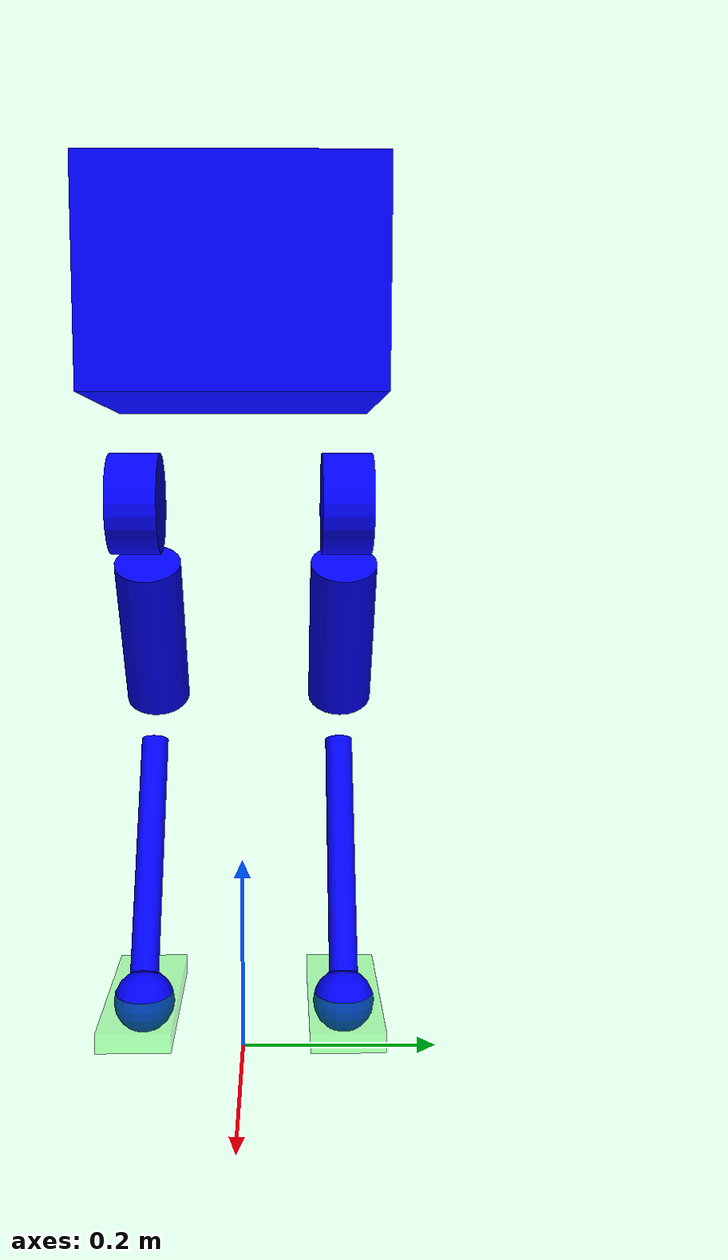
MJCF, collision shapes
<mujoco model="point_foot">
    <compiler angle="radian" meshdir="../meshes/" />
    <size njmax="500" nconmax="100" />

    <default>
        <light castshadow="false" diffuse="1 1 1" />
        <camera fovy="60"/>
        <default class="visual">
            <geom contype="0" conaffinity="0" group="1" type="mesh" rgba="0.9 0.9 0.9 1.0"/>
        </default>
        <geom contype="1" conaffinity="1" condim="6" friction="1.0 0.005 0.0001" rgba="0.5 0.6 0.7 0.0" margin="0.001" group="0" solref="0.01 1" solimp="0.9 0.95 0.001" />
    </default>
    <visual>
        <rgba com="0.502 1.0 0 0.5" contactpoint="1.0 1.0 0.6 0.4" contactforce="0.2 0.98 0.2 0.8"/>
        <scale com="0.2" forcewidth="0.05" contactwidth="0.10" contactheight="0.04"/>
    </visual>

    <option timestep="0.001"/>

    <asset>
        <mesh name="base_Link" file="../meshes/point_foot/base_Link.STL" />
        <mesh name="abad_L_Link" file="../meshes/point_foot/abad_L_Link.STL" />
        <mesh name="hip_L_Link" file="../meshes/point_foot/hip_L_Link.STL" />
        <mesh name="knee_L_Link" file="../meshes/point_foot/knee_L_Link.STL" />
        <mesh name="foot_L_Link" file="../meshes/point_foot/foot_L_Link.STL" />
        <mesh name="abad_R_Link" file="../meshes/point_foot/abad_R_Link.STL" />
        <mesh name="hip_R_Link" file="../meshes/point_foot/hip_R_Link.STL" />
        <mesh name="knee_R_Link" file="../meshes/point_foot/knee_R_Link.STL" />
        <mesh name="foot_R_Link" file="../meshes/point_foot/foot_R_Link.STL" />
    </asset>

    <worldbody>
        <body name="base_Link" pos="0 0 0.82">
            <camera name="tracking" pos="0.846 -1.3 0.316" xyaxes="0.866 0.500 0.000 -0.171 0.296 0.940" mode="trackcom"/>
            <inertial pos="0.0457123 0.000139854 -0.163809" quat="0.972578 -0.00615364 -0.232461 0.00398682" mass="9.595" diaginertia="0.154712 0.11093 0.0846371" />
            <joint type="free" limited="false" damping="0.0000" stiffness="0.0000" armature="0"/>
            <site name="imu" pos="0 0 0"/>
            <geom class="visual" rgba="0.79216 0.81961 0.93333 1" mesh="base_Link" />
            <geom name="base_collision" size="0.135 0.13 0.095" pos="0.03 0 -0.072" type="box" rgba="0 0 1 0" />

            <body name="abad_L_Link" pos="0.05556 0.105 -0.2602">
                <inertial pos="-0.06977 0.04479 0.00057" quat="0.595024 0.579772 0.394141 0.393019" mass="1.469" diaginertia="0.00252289 0.00208104 0.00139163" />
                <joint name="abad_L_Joint" pos="0 0 0" axis="1 0 0" limited="true" range="-0.38397 1.39626" armature="0.000215"/>
                <geom class="visual" rgba="0.79216 0.81961 0.93333 1" mesh="abad_L_Link" />
                <geom name="abad_L_collision" type="cylinder" pos="-0.08 0 0" euler="1.57 0 0" size="0.05 0.025" rgba="0 0 1 0" />

                <body name="hip_L_Link" pos="-0.077 0.0205 0">
                    <inertial pos="-0.02869 -0.0477 -0.03992" quat="0.853885 0.192797 0.226903 0.426877" mass="2.3" diaginertia="0.0233264 0.0230229 0.00277548" />
                    <joint name="hip_L_Joint" pos="0 0 0" axis="0 1 0" limited="true" range="-1.01229 1.39626" armature="0.000215"/>
                    <geom class="visual" rgba="1 1 1 1" mesh="hip_L_Link" />
                    <geom name="hip_L_collision" type="cylinder" pos="-0.1 -0.02 -0.14" euler="0 0.53 0" size="0.035 0.09" rgba="0 0 1 0" />

                    <body name="knee_L_Link" pos="-0.15 -0.0205 -0.25981">
                        <inertial pos="0.05168 0.00152 -0.08148" quat="0.668191 -0.202995 -0.19946 0.687408" mass="0.55" diaginertia="0.00419956 0.00414131 0.000138393" />
                        <joint name="knee_L_Joint" pos="0 0 0" axis="0 -1 0" limited="true" range="-0.872665 1.36136" armature="0.000215"/>
                        <geom class="visual" rgba="0.79216 0.81961 0.93333 1" mesh="knee_L_Link" />
                        <geom name="knee_L_collision" type="cylinder" pos="0.078 0 -0.12" euler="0 -0.55 0" size="0.015 0.13" rgba ="0 0 1 0"/>

                        <geom class="visual" pos="0.150 0 -0.2598" rgba="0.26667 0.26667 0.26667 1" mesh="foot_L_Link" />
                        <geom name="foot_L_collision" type="sphere" pos="0.150 0 -0.2598" size="0.032" rgba="0 0 1 0" />
                        <site name="L_touch"  type="box" pos="0.150 0 -0.2598" size="0.097 0.037 0.01" rgba="0 1 0 0.3" />
                    </body>
                </body>
            </body>

            <body name="abad_R_Link" pos="0.05556 -0.105 -0.2602">
                <inertial pos="-0.06977 -0.04479 0.00057" quat="0.393019 0.394141 0.579772 0.595024" mass="1.469" diaginertia="0.00252289 0.00208104 0.00139163" />
                <joint name="abad_R_Joint" pos="0 0 0" axis="1 0 0" limited="true" range="-1.39626 0.38397" armature="0.000215"/>
                <geom class="visual" rgba="0.79216 0.81961 0.93333 1" mesh="abad_R_Link" />
                <geom name="abad_R_collision" type="cylinder" pos="-0.08 0 0" euler="1.57 0 0" size="0.05 0.025" rgba="0 0 1 0" />

                <body name="hip_R_Link" pos="-0.077 -0.0205 0">
                    <inertial pos="-0.02869 0.0477 -0.03992" quat="0.426877 0.226903 0.192797 0.853885" mass="2.3" diaginertia="0.0233264 0.0230229 0.00277548" />
                    <joint name="hip_R_Joint" pos="0 0 0" axis="0 -1 0" limited="true" range="-1.39626 1.01229" armature="0.000215"/>
                    <geom class="visual" rgba="1 1 1 1" mesh="hip_R_Link" />
                    <geom name="hip_R_collision" type="cylinder" pos="-0.10 0.025 -0.14" euler="0 0.53 0" size="0.035 0.09" rgba="0 0 1 0" />

                    <body name="knee_R_Link" pos="-0.15 0.0205 -0.25981">
                        <inertial pos="0.05168 -0.00152 -0.08148" quat="0.687408 -0.19946 -0.202995 0.668191" mass="0.55" diaginertia="0.00419956 0.00414131 0.000138393" />
                        <joint name="knee_R_Joint" pos="0 0 0" axis="0 1 0" limited="true" range="-1.36136 0.872665" armature="0.000215"/>
                        <geom class="visual" rgba="0.79216 0.81961 0.93333 1" mesh="knee_R_Link" />
                        <geom name="knee_R_collision" type="cylinder" pos="0.078 0 -0.12" euler="0 -0.55 0" size="0.015 0.13" rgba ="0 0 1 0"/>

                        <geom class="visual" pos="0.150 0 -0.2598" rgba="0.26667 0.26667 0.26667 1" mesh="foot_L_Link" />
                        <geom name="foot_R_collision" type="sphere" pos="0.150 0 -0.2598" size="0.032" rgba="0 0 1 0" />
                        <site name="R_touch"  type="box" pos="0.150 0 -0.2598" size="0.097 0.037 0.01" rgba="0 1 0 0.3" />
                    </body>
                </body>
            </body>
        </body>
    </worldbody>

    <actuator>
        <motor name="abad_L_Joint"  gear="1"  joint="abad_L_Joint" ctrllimited='true' ctrlrange='-80 80'/><!-- gear 18.6624.0-->
        <motor name="hip_L_Joint"   gear="1"  joint="hip_L_Joint"  ctrllimited='true' ctrlrange='-80 80'/>
        <motor name="knee_L_Joint"  gear="1"  joint="knee_L_Joint" ctrllimited='true' ctrlrange='-80 80'/>
        <motor name="abad_R_Joint"  gear="1"  joint="abad_R_Joint" ctrllimited='true' ctrlrange='-80 80' />
        <motor name="hip_R_Joint"   gear="1"  joint="hip_R_Joint"  ctrllimited='true' ctrlrange='-80 80' />
        <motor name="knee_R_Joint"  gear="1"  joint="knee_R_Joint" ctrllimited='true' ctrlrange='-80 80'/>
    </actuator>

    <sensor>
        <framequat name="imu_quat" objtype="site" objname="imu"/>
        <gyro name="imu_gyro" site="imu"/>
        <accelerometer name="imu_acc" site="imu"/>
        <jointpos name="abad_L_pos"    joint="abad_L_Joint" />
        <jointpos name="hip_L_pos"     joint="hip_L_Joint" />
        <jointpos name="knee_L_pos"    joint="knee_L_Joint" />
        <jointpos name="abad_R_pos"    joint="abad_R_Joint" />
        <jointpos name="hip_R_pos"     joint="hip_R_Joint" />
        <jointpos name="knee_R_pos"    joint="knee_R_Joint" />

        <jointvel name="abad_L_vel"    joint="abad_L_Joint" />
        <jointvel name="hip_L_vel"     joint="hip_L_Joint" />
        <jointvel name="knee_L_vel"    joint="knee_L_Joint" />
        <jointvel name="abad_R_vel"    joint="abad_R_Joint" />
        <jointvel name="hip_R_vel"     joint="hip_R_Joint" />
        <jointvel name="knee_R_vel"    joint="knee_R_Joint" />

        <jointactuatorfrc name="abad_L_tau"    joint="abad_L_Joint" />
        <jointactuatorfrc name="hip_L_tau"     joint="hip_L_Joint" />
        <jointactuatorfrc name="knee_L_tau"    joint="knee_L_Joint" />
        <jointactuatorfrc name="abad_R_tau"    joint="abad_R_Joint" />
        <jointactuatorfrc name="hip_R_tau"     joint="hip_R_Joint" />
        <jointactuatorfrc name="knee_R_tau"    joint="knee_R_Joint" />

        <touch name="L_contact_sensor" site="L_touch" />
        <touch name="R_contact_sensor" site="R_touch" />

        <!-- Ground Truth -->
        <framepos name="frame_pos" objtype="site" objname="imu" />
        <framequat name="frame_quat" objtype="site" objname="imu" />
        <framelinvel name="frame_linvel" objtype= "site" objname="imu"/>
        <frameangvel name="frame_angvel" objtype= "site" objname="imu"/>
        <framelinacc name="frame_linacc" objtype= "site" objname="imu"/>
        <frameangacc name="frame_angacc" objtype= "site" objname="imu"/>

        <!--keep the relative order between these four sensors-->
        <force name="L_grf" site="L_touch"/>
        <force name="R_grf" site="R_touch"/>
        <framequat name="L_foot_quat" objname="L_touch" objtype="site"/>
        <framequat name="R_foot_quat" objname="R_touch" objtype="site"/>
    </sensor>

    <keyframe>
        <key name="home" qpos="0 0 0.55
                                  1 0 0 0
                                  0 0.58 1.35
                                  0 -0.58 -1.35"/>

    </keyframe>
</mujoco>
